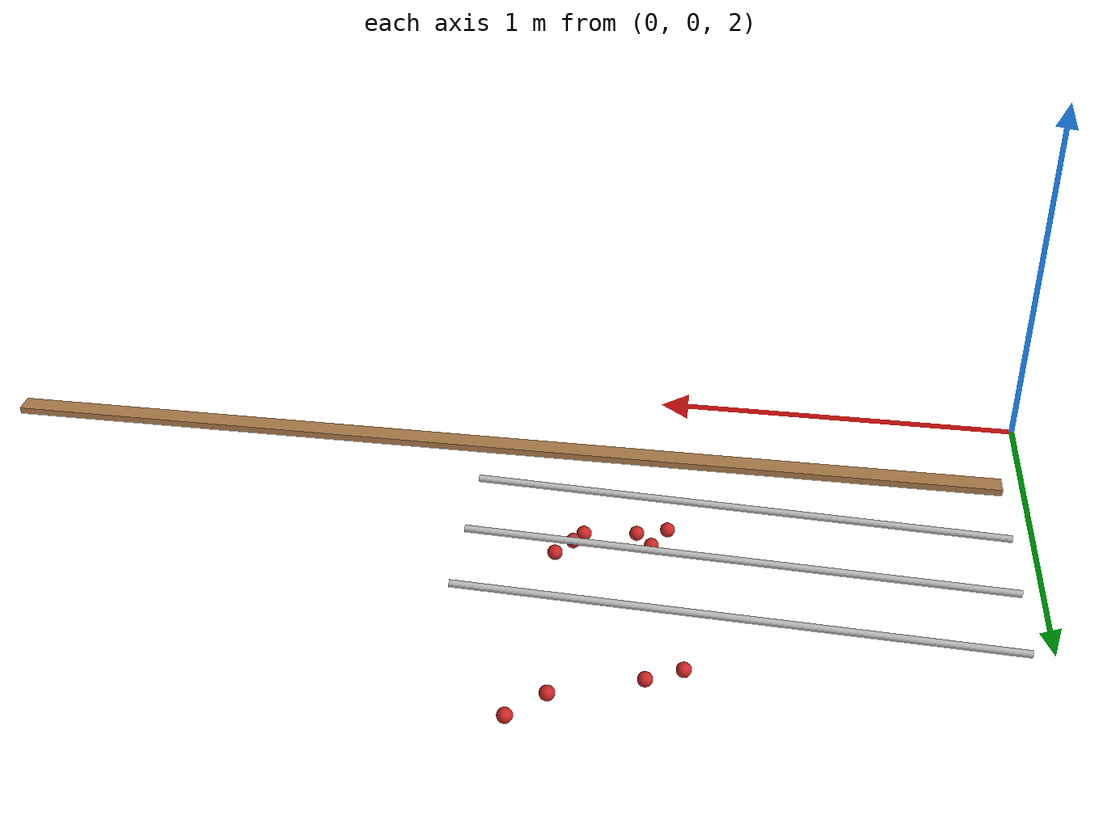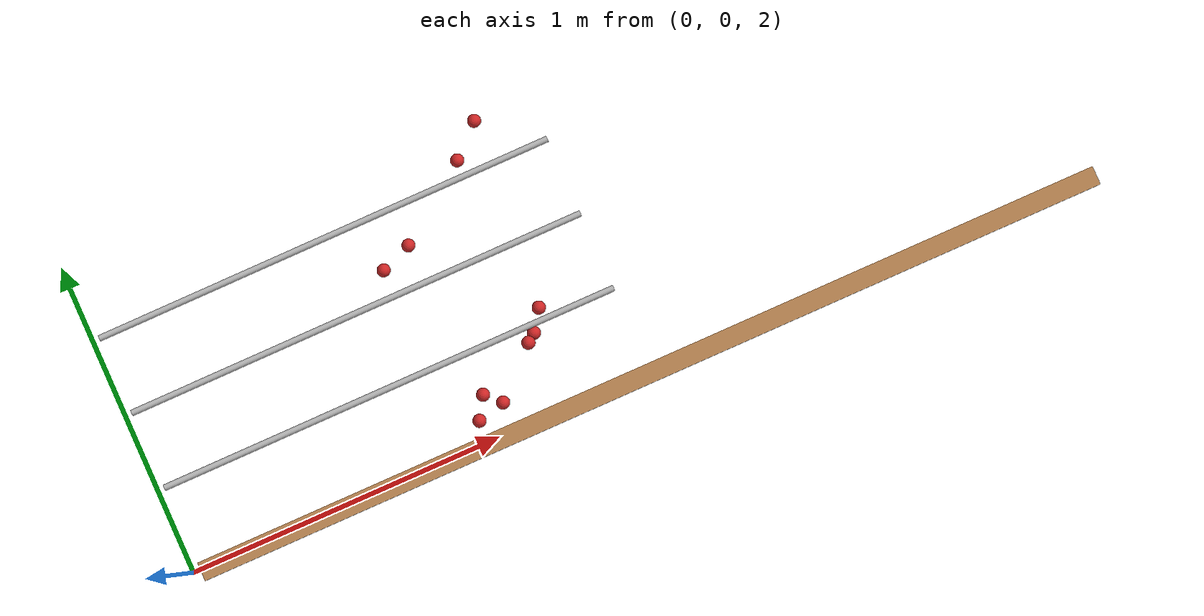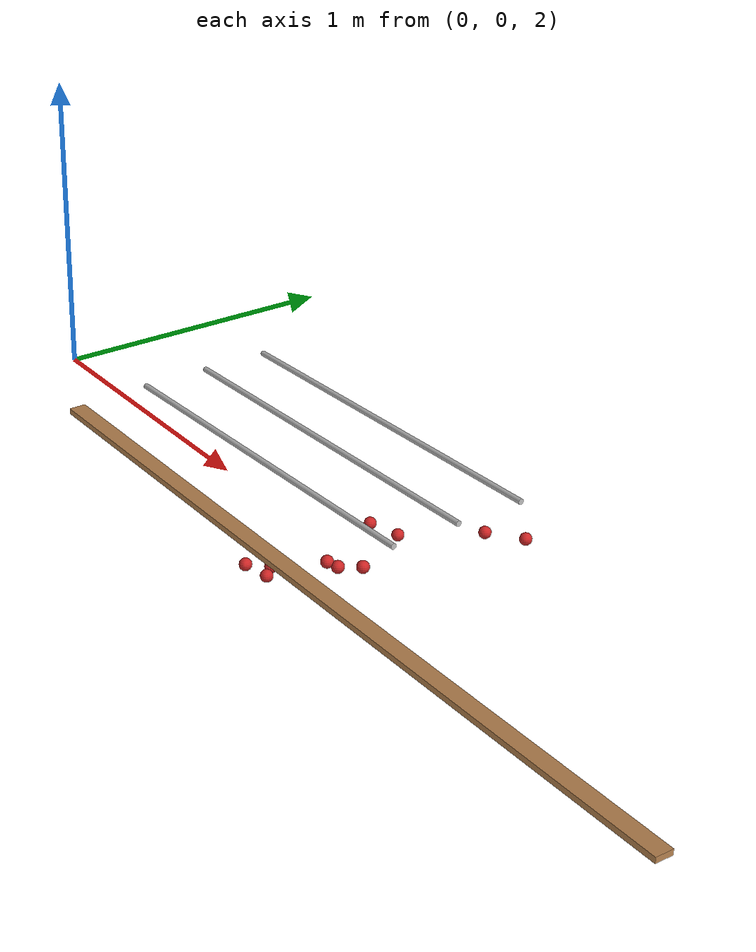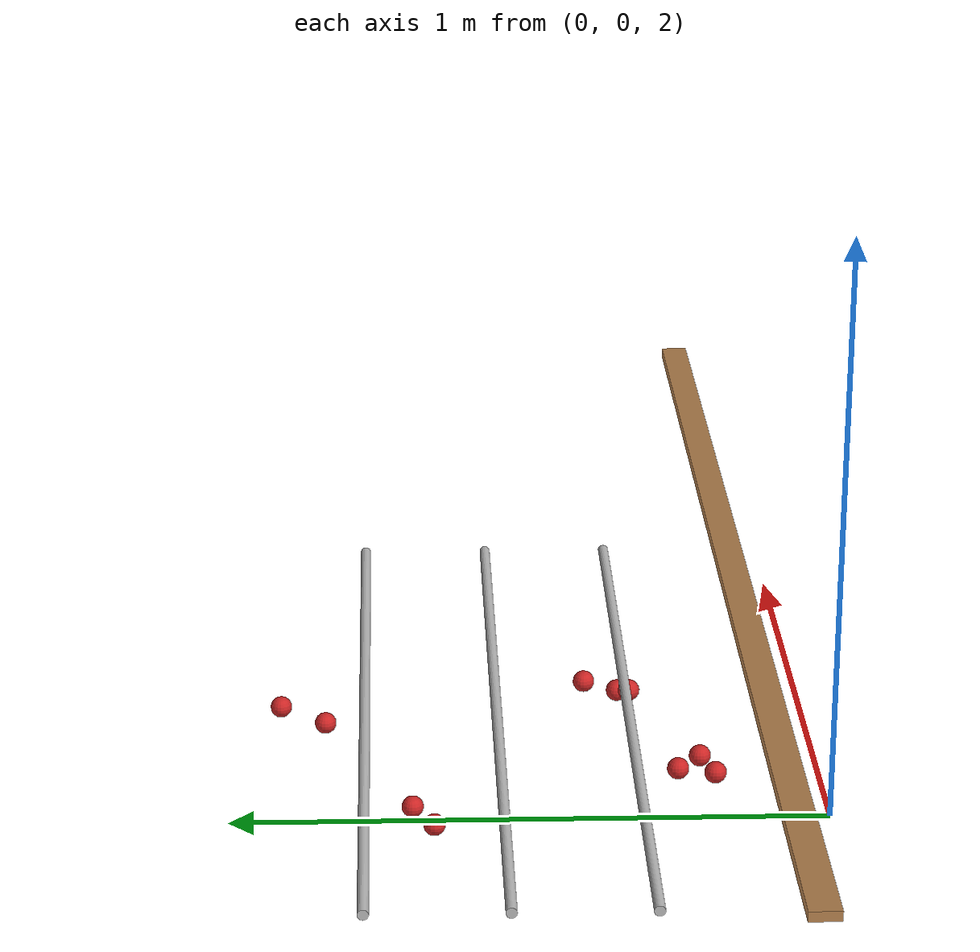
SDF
<sdf version="1.4">
 <model name="pergola">
  <link name="beam_0">
   <pose>1.5 0.0 1.81 0 0 0</pose>
   <collision name="collision"><geometry><box><size>3.0 0.06 0.02</size></box></geometry></collision>
   <visual name="visual">
    <geometry><box><size>3.0 0.06 0.02</size></box></geometry>
    <material>
     <script>
      <uri>model://post/materials/scripts</uri>
      <uri>model://post/materials/textures</uri>
      <name>Post/Wood</name>
     </script>
    </material>
   </visual>
   <inertial>
    <mass>5</mass>
    <inertia>
     <ixx>0.0016666666666666668</ixx>
     <ixy>0.0</ixy>
     <ixz>0.0</ixz>
     <iyy>3.7515</iyy>
     <iyz>0.0</iyz>
     <izz>3.750166666666667</izz>
    </inertia>
   </inertial>
  </link>
  <link name="vine_2">
   <pose>0.75 0.28 1.85 0 1.5374753309166493 0</pose>
   <collision name="collision">
    <geometry><cylinder><radius>0.01</radius><length>1.5008331019803633</length></cylinder></geometry>
   </collision>
   <visual name="visual">
    <geometry><cylinder><radius>0.01</radius><length>1.5008331019803633</length></cylinder></geometry>
    <material>
     <script>
      <uri>model://tree_trunk/materials/scripts</uri>
      <uri>model://tree_trunk/materials/textures</uri>
      <name>Tree/Bark</name>
     </script>
    </material>
   </visual>
   <inertial>
    <mass>5</mass>
    <inertia>
     <ixx>0.9386666666666668</ixx>
     <ixy>0.0</ixy>
     <ixz>0.0</ixz>
     <iyy>0.9386666666666668</iyy>
     <iyz>0.0</iyz>
     <izz>0.00025</izz>
    </inertia>
   </inertial>
  </link>
  <link name="vine_4">
   <pose>0.75 0.53 1.85 0 1.5374753309166493 0</pose>
   <collision name="collision">
    <geometry><cylinder><radius>0.01</radius><length>1.5008331019803633</length></cylinder></geometry>
   </collision>
   <visual name="visual">
    <geometry><cylinder><radius>0.01</radius><length>1.5008331019803633</length></cylinder></geometry>
    <material>
     <script>
      <uri>model://tree_trunk/materials/scripts</uri>
      <uri>model://tree_trunk/materials/textures</uri>
      <name>Tree/Bark</name>
     </script>
    </material>
   </visual>
   <inertial>
    <mass>5</mass>
    <inertia>
     <ixx>0.9386666666666668</ixx>
     <ixy>0.0</ixy>
     <ixz>0.0</ixz>
     <iyy>0.9386666666666668</iyy>
     <iyz>0.0</iyz>
     <izz>0.00025</izz>
    </inertia>
   </inertial>
  </link>
  <link name="vine_6">
   <pose>0.75 0.78 1.85 0 1.5374753309166493 0</pose>
   <collision name="collision">
    <geometry><cylinder><radius>0.01</radius><length>1.5008331019803633</length></cylinder></geometry>
   </collision>
   <visual name="visual">
    <geometry><cylinder><radius>0.01</radius><length>1.5008331019803633</length></cylinder></geometry>
    <material>
     <script>
      <uri>model://tree_trunk/materials/scripts</uri>
      <uri>model://tree_trunk/materials/textures</uri>
      <name>Tree/Bark</name>
     </script>
    </material>
   </visual>
   <inertial>
    <mass>5</mass>
    <inertia>
     <ixx>0.9386666666666668</ixx>
     <ixy>0.0</ixy>
     <ixz>0.0</ixz>
     <iyy>0.9386666666666668</iyy>
     <iyz>0.0</iyz>
     <izz>0.00025</izz>
    </inertia>
   </inertial>
  </link>
  <link name="fruit_46">
   <pose>1.196838026515076 0.24414007605629745 1.6868946847057606 0 0 0</pose>
   <collision name="fruit_collision_46"><geometry><sphere><radius>0.022</radius></sphere></geometry></collision>
   <visual name="visual">
    <geometry><sphere><radius>0.022</radius></sphere></geometry>
    <material><script><name>Gazebo/Red</name></script></material>
   </visual>
   <inertial>
    <mass>0.05</mass>
    <inertia>
     <ixx>9.679999999999999e-06</ixx>
     <ixy>0.0</ixy>
     <ixz>0.0</ixz>
     <iyy>9.679999999999999e-06</iyy>
     <iyz>0.0</iyz>
     <izz>9.679999999999999e-06</izz>
    </inertia>
   </inertial>
   <sensor name="fruit_contact_46" type="contact">
    <plugin name="contact_plugin_46" filename="libcontact_plugin.so"/>
    <contact><collision>fruit_collision_46</collision><topic>fruit_contact_topic_46</topic></contact>
   </sensor>
  </link>
  <link name="fruit_56">
   <pose>0.9589585715995258 0.08683026156021306 1.613935665601964 0 0 0</pose>
   <collision name="fruit_collision_56"><geometry><sphere><radius>0.022</radius></sphere></geometry></collision>
   <visual name="visual">
    <geometry><sphere><radius>0.022</radius></sphere></geometry>
    <material><script><name>Gazebo/Red</name></script></material>
   </visual>
   <inertial>
    <mass>0.05</mass>
    <inertia>
     <ixx>9.679999999999999e-06</ixx>
     <ixy>0.0</ixy>
     <ixz>0.0</ixz>
     <iyy>9.679999999999999e-06</iyy>
     <iyz>0.0</iyz>
     <izz>9.679999999999999e-06</izz>
    </inertia>
   </inertial>
   <sensor name="fruit_contact_56" type="contact">
    <plugin name="contact_plugin_56" filename="libcontact_plugin.so"/>
    <contact><collision>fruit_collision_56</collision><topic>fruit_contact_topic_56</topic></contact>
   </sensor>
  </link>
  <link name="fruit_76">
   <pose>1.2251242394444872 0.8652628998300022 1.6075635157177077 0 0 0</pose>
   <collision name="fruit_collision_76"><geometry><sphere><radius>0.022</radius></sphere></geometry></collision>
   <visual name="visual">
    <geometry><sphere><radius>0.022</radius></sphere></geometry>
    <material><script><name>Gazebo/Red</name></script></material>
   </visual>
   <inertial>
    <mass>0.05</mass>
    <inertia>
     <ixx>9.679999999999999e-06</ixx>
     <ixy>0.0</ixy>
     <ixz>0.0</ixz>
     <iyy>9.679999999999999e-06</iyy>
     <iyz>0.0</iyz>
     <izz>9.679999999999999e-06</izz>
    </inertia>
   </inertial>
   <sensor name="fruit_contact_76" type="contact">
    <plugin name="contact_plugin_76" filename="libcontact_plugin.so"/>
    <contact><collision>fruit_collision_76</collision><topic>fruit_contact_topic_76</topic></contact>
   </sensor>
  </link>
  <link name="fruit_84">
   <pose>0.873025053826078 0.6471311340832292 1.5493057083429294 0 0 0</pose>
   <collision name="fruit_collision_84"><geometry><sphere><radius>0.022</radius></sphere></geometry></collision>
   <visual name="visual">
    <geometry><sphere><radius>0.022</radius></sphere></geometry>
    <material><script><name>Gazebo/Red</name></script></material>
   </visual>
   <inertial>
    <mass>0.05</mass>
    <inertia>
     <ixx>9.679999999999999e-06</ixx>
     <ixy>0.0</ixy>
     <ixz>0.0</ixz>
     <iyy>9.679999999999999e-06</iyy>
     <iyz>0.0</iyz>
     <izz>9.679999999999999e-06</izz>
    </inertia>
   </inertial>
   <sensor name="fruit_contact_84" type="contact">
    <plugin name="contact_plugin_84" filename="libcontact_plugin.so"/>
    <contact><collision>fruit_collision_84</collision><topic>fruit_contact_topic_84</topic></contact>
   </sensor>
  </link>
  <link name="fruit_170">
   <pose>0.9760592702806181 0.6890082695075018 1.5378712415598557 0 0 0</pose>
   <collision name="fruit_collision_170"><geometry><sphere><radius>0.022</radius></sphere></geometry></collision>
   <visual name="visual">
    <geometry><sphere><radius>0.022</radius></sphere></geometry>
    <material><script><name>Gazebo/Red</name></script></material>
   </visual>
   <inertial>
    <mass>0.05</mass>
    <inertia>
     <ixx>9.679999999999999e-06</ixx>
     <ixy>0.0</ixy>
     <ixz>0.0</ixz>
     <iyy>9.679999999999999e-06</iyy>
     <iyz>0.0</iyz>
     <izz>9.679999999999999e-06</izz>
    </inertia>
   </inertial>
   <sensor name="fruit_contact_170" type="contact">
    <plugin name="contact_plugin_170" filename="libcontact_plugin.so"/>
    <contact><collision>fruit_collision_170</collision><topic>fruit_contact_topic_170</topic></contact>
   </sensor>
  </link>
  <link name="fruit_174">
   <pose>1.049445900739228 0.10968059775399766 1.6076219377478405 0 0 0</pose>
   <collision name="fruit_collision_174"><geometry><sphere><radius>0.022</radius></sphere></geometry></collision>
   <visual name="visual">
    <geometry><sphere><radius>0.022</radius></sphere></geometry>
    <material><script><name>Gazebo/Red</name></script></material>
   </visual>
   <inertial>
    <mass>0.05</mass>
    <inertia>
     <ixx>9.679999999999999e-06</ixx>
     <ixy>0.0</ixy>
     <ixz>0.0</ixz>
     <iyy>9.679999999999999e-06</iyy>
     <iyz>0.0</iyz>
     <izz>9.679999999999999e-06</izz>
    </inertia>
   </inertial>
   <sensor name="fruit_contact_174" type="contact">
    <plugin name="contact_plugin_174" filename="libcontact_plugin.so"/>
    <contact><collision>fruit_collision_174</collision><topic>fruit_contact_topic_174</topic></contact>
   </sensor>
  </link>
  <link name="fruit_220">
   <pose>1.0017457940314605 0.15746588120827285 1.6027241474256508 0 0 0</pose>
   <collision name="fruit_collision_220"><geometry><sphere><radius>0.022</radius></sphere></geometry></collision>
   <visual name="visual">
    <geometry><sphere><radius>0.022</radius></sphere></geometry>
    <material><script><name>Gazebo/Red</name></script></material>
   </visual>
   <inertial>
    <mass>0.05</mass>
    <inertia>
     <ixx>9.679999999999999e-06</ixx>
     <ixy>0.0</ixy>
     <ixz>0.0</ixz>
     <iyy>9.679999999999999e-06</iyy>
     <iyz>0.0</iyz>
     <izz>9.679999999999999e-06</izz>
    </inertia>
   </inertial>
   <sensor name="fruit_contact_220" type="contact">
    <plugin name="contact_plugin_220" filename="libcontact_plugin.so"/>
    <contact><collision>fruit_collision_220</collision><topic>fruit_contact_topic_220</topic></contact>
   </sensor>
  </link>
  <link name="fruit_233">
   <pose>1.3246362422022506 0.959419997064118 1.599178856468964 0 0 0</pose>
   <collision name="fruit_collision_233"><geometry><sphere><radius>0.022</radius></sphere></geometry></collision>
   <visual name="visual">
    <geometry><sphere><radius>0.022</radius></sphere></geometry>
    <material><script><name>Gazebo/Red</name></script></material>
   </visual>
   <inertial>
    <mass>0.05</mass>
    <inertia>
     <ixx>9.679999999999999e-06</ixx>
     <ixy>0.0</ixy>
     <ixz>0.0</ixz>
     <iyy>9.679999999999999e-06</iyy>
     <iyz>0.0</iyz>
     <izz>9.679999999999999e-06</izz>
    </inertia>
   </inertial>
   <sensor name="fruit_contact_233" type="contact">
    <plugin name="contact_plugin_233" filename="libcontact_plugin.so"/>
    <contact><collision>fruit_collision_233</collision><topic>fruit_contact_topic_233</topic></contact>
   </sensor>
  </link>
  <link name="fruit_442">
   <pose>1.2707314431447154 0.3319120428540248 1.6743071743695808 0 0 0</pose>
   <collision name="fruit_collision_442"><geometry><sphere><radius>0.022</radius></sphere></geometry></collision>
   <visual name="visual">
    <geometry><sphere><radius>0.022</radius></sphere></geometry>
    <material><script><name>Gazebo/Red</name></script></material>
   </visual>
   <inertial>
    <mass>0.05</mass>
    <inertia>
     <ixx>9.679999999999999e-06</ixx>
     <ixy>0.0</ixy>
     <ixz>0.0</ixz>
     <iyy>9.679999999999999e-06</iyy>
     <iyz>0.0</iyz>
     <izz>9.679999999999999e-06</izz>
    </inertia>
   </inertial>
   <sensor name="fruit_contact_442" type="contact">
    <plugin name="contact_plugin_442" filename="libcontact_plugin.so"/>
    <contact><collision>fruit_collision_442</collision><topic>fruit_contact_topic_442</topic></contact>
   </sensor>
  </link>
  <link name="fruit_459">
   <pose>1.224738352414221 0.26638656716711245 1.6739105240496035 0 0 0</pose>
   <collision name="fruit_collision_459"><geometry><sphere><radius>0.022</radius></sphere></geometry></collision>
   <visual name="visual">
    <geometry><sphere><radius>0.022</radius></sphere></geometry>
    <material><script><name>Gazebo/Red</name></script></material>
   </visual>
   <inertial>
    <mass>0.05</mass>
    <inertia>
     <ixx>9.679999999999999e-06</ixx>
     <ixy>0.0</ixy>
     <ixz>0.0</ixz>
     <iyy>9.679999999999999e-06</iyy>
     <iyz>0.0</iyz>
     <izz>9.679999999999999e-06</izz>
    </inertia>
   </inertial>
   <sensor name="fruit_contact_459" type="contact">
    <plugin name="contact_plugin_459" filename="libcontact_plugin.so"/>
    <contact><collision>fruit_collision_459</collision><topic>fruit_contact_topic_459</topic></contact>
   </sensor>
  </link>
 </model>
</sdf>
